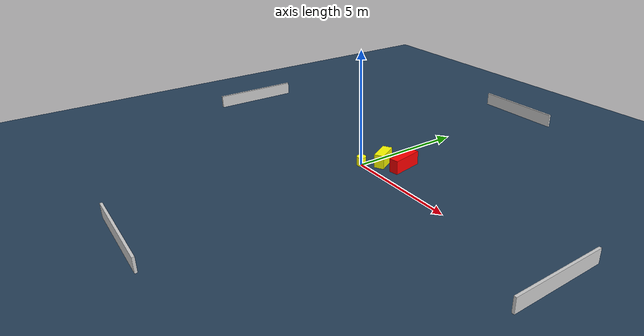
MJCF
<?xml version="1.0" ?>
<mujoco model="generated_environment">
  <option timestep="0.01" integrator="RK4" cone="elliptic"/>
  <default>
    <geom density="1"/>
  </default>
  <asset>
    <texture builtin="gradient" height="3072" name="skybox" rgb1="0.3 0.5 0.7" rgb2="0 0 0" type="skybox" width="512"/>
    <texture builtin="checker" height="300" name="groundplane" rgb1="0.2 0.3 0.4" rgb2="0.1 0.2 0.3" type="2d" width="300"/>
    <material name="groundplane" reflectance="0.2" texrepeat="5 5" texture="groundplane"/>
  </asset>
  <worldbody>
    <light dir="0 0 -1" directional="true" pos="0 0 1.5"/>
    <geom condim="3" friction="0.5 0.005 0.001" material="groundplane" name="floor" pos="0 0 0" size="0 0 0.05" type="plane"/>
    <body name="walls">
      <geom name="wall_1" condim="4" pos="-10.0 0.0 0.3" rgba="0.800000011920929 0.800000011920929 0.800000011920929 1.0" size="0.05 2.0 0.3" type="box"/>
      <geom name="wall_2" condim="4" pos="10.0 0.0 0.3" rgba="0.800000011920929 0.800000011920929 0.800000011920929 1.0" size="0.05 2.0 0.3" type="box"/>
      <geom name="wall_3" condim="4" pos="0.0 -10.0 0.3" rgba="0.800000011920929 0.800000011920929 0.800000011920929 1.0" size="2.0 0.05 0.3" type="box"/>
      <geom name="wall_4" condim="4" pos="0.0 10.0 0.3" rgba="0.800000011920929 0.800000011920929 0.800000011920929 1.0" size="2.0 0.05 0.3" type="box"/>
    </body>
    <body name="robot">
      <joint name="joint_x" type="slide" pos="0 0 0" axis="1 0 0"/>
      <joint name="joint_y" type="slide" pos="0 0 0" axis="0 1 0"/>
      <geom name="robot" type="cylinder" pos="0.0 0.0 0.2" size="0.2 0.2 0.0" mass="5.0" friction="1.0 0.005 0.0001" condim="4" rgba="1.0 1.0 0.0 1.0"/>
    </body>
    <body name="obstacle_1_movable">
      <geom name="obstacle_1_movable" condim="4" pos="0.46539035170107174 0.8153272462497712 0.3" euler="0 0 29.878852410702198" friction="0.0 0.005 0.001" rgba="1.0 1.0 0.0 1.0" size="0.2182065558142225 0.4878214869855127 0.3" type="box" mass="0.1"/>
      <joint type="free"/>
    </body>
    <body name="obstacle_2_static">
      <geom name="obstacle_2_static" condim="4" pos="1.2743542954734655 1.2898386675614228 0.3" euler="0 0 281.0970930460078" friction="0.0 0.005 0.001" rgba="1.0 0.0 0.0 1.0" size="0.6877813474638804 0.20576727722481986 0.3" type="box"/>
    </body>
  </worldbody>
  <actuator>
    <motor name="actuator_x" joint="joint_x" gear="1" ctrlrange="-1 1"/>
    <motor name="actuator_y" joint="joint_y" gear="1" ctrlrange="-1 1"/>
  </actuator>
</mujoco>
